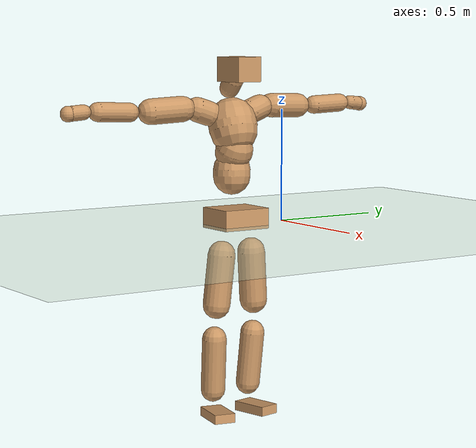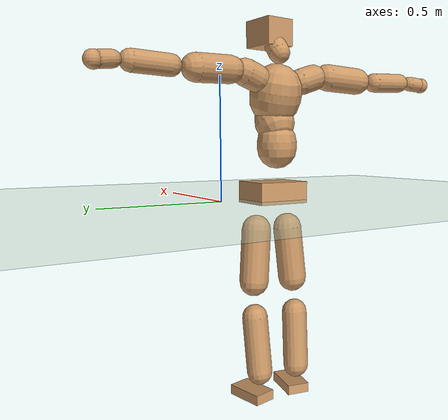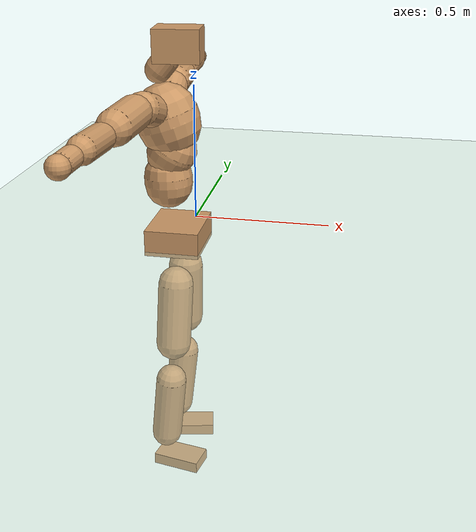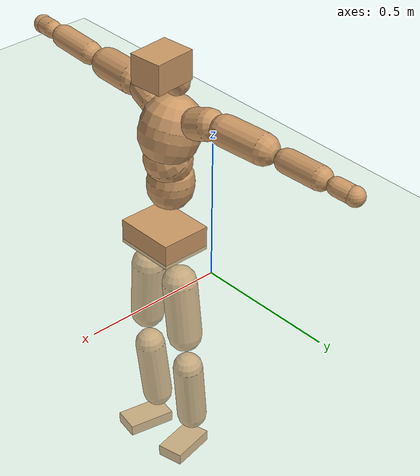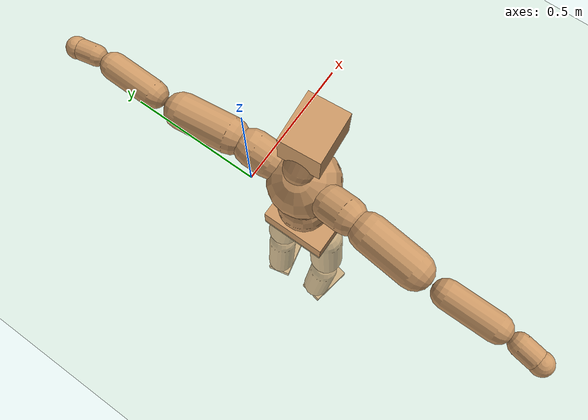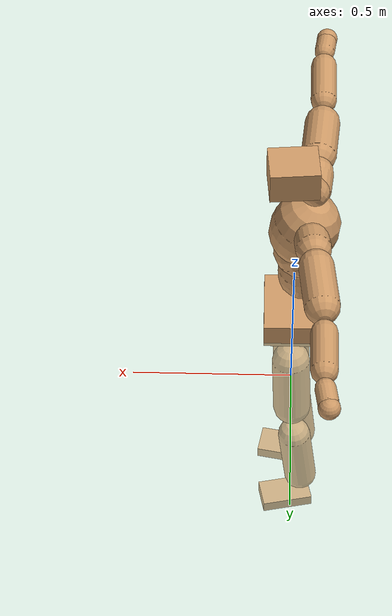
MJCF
<mujoco model="humanoid">
  <compiler coordinate="local" angle="radian"/>
  <default>
    <joint damping="0.0" armature="0.01" stiffness="0.0" limited="true"/>
    <geom conaffinity="1" condim="3" contype="7" margin="0.001" rgba="0.8 0.6 .4 1"/>
  </default>
  <asset>
    <texture type="skybox" builtin="gradient" rgb1=".4 .5 .6" rgb2="0 0 0" width="100" height="100"/>
    <texture builtin="flat" height="1278" mark="cross" markrgb="1 1 1" name="texgeom" random="0.01" rgb1="0.8 0.6 0.4" rgb2="0.8 0.6 0.4" type="cube" width="127"/>
    <texture builtin="checker" height="100" name="texplane" rgb1="0 0 0" rgb2="0.8 0.8 0.8" type="2d" width="100"/>
    <material name="MatPlane" reflectance="0.5" shininess="1" specular="1" texrepeat="60 60" texture="texplane"/>
    <material name="geom" texture="texgeom" texuniform="true"/>
  </asset>
  <worldbody>
    <light cutoff="100" diffuse="1 1 1" dir="-0 0 -1.3" directional="true" exponent="1" pos="0 0 1.3" specular=".1 .1 .1"/>
    <geom conaffinity="1" condim="3" name="floor" pos="0 0 0" rgba="0.8 0.9 0.8 1" size="100 100 .2" type="plane" material="MatPlane"/>
    <body name="Pelvis" pos="0.0003 -0.2436 0.0425">
      <freejoint name="Pelvis"/>
      <geom type="box" contype="1" conaffinity="1" density="500" pos="-0.0051 -0.0000 -0.0132" size="0.0931 0.1124 0.0453" quat="1.0000 0.0000 0.0000 0.0008" name="Pelvis"/>
      <body name="L_Hip" pos="-0.0002 0.0746 -0.0961">
        <joint name="L_Hip_x" type="hinge" pos="0 0 0" axis="1 0 0" stiffness="800" damping="80" armature="0.02" range="-180.0000 180.0000"/>
        <joint name="L_Hip_y" type="hinge" pos="0 0 0" axis="0 1 0" stiffness="800" damping="80" armature="0.02" range="-180.0000 180.0000"/>
        <joint name="L_Hip_z" type="hinge" pos="0 0 0" axis="0 0 1" stiffness="800" damping="80" armature="0.02" range="-180.0000 180.0000"/>
        <geom type="capsule" contype="1" conaffinity="1" density="500" fromto="-0.0026 0.0058 -0.0734 -0.0106 0.0233 -0.2938" size="0.0618" name="L_Hip"/>
        <body name="L_Knee" pos="-0.0132 0.0291 -0.3672">
          <joint name="L_Knee_x" type="hinge" pos="0 0 0" axis="1 0 0" stiffness="800" damping="80" armature="0.02" range="-180.0000 180.0000"/>
          <joint name="L_Knee_y" type="hinge" pos="0 0 0" axis="0 1 0" stiffness="800" damping="80" armature="0.02" range="-180.0000 180.0000"/>
          <joint name="L_Knee_z" type="hinge" pos="0 0 0" axis="0 0 1" stiffness="800" damping="80" armature="0.02" range="-180.0000 180.0000"/>
          <geom type="capsule" contype="1" conaffinity="1" density="500" fromto="-0.0088 -0.0024 -0.0787 -0.0353 -0.0095 -0.3148" size="0.0539" name="L_Knee"/>
          <body name="L_Ankle" pos="-0.0441 -0.0119 -0.3935">
            <joint name="L_Ankle_x" type="hinge" pos="0 0 0" axis="1 0 0" stiffness="800" damping="80" armature="0.02" range="-180.0000 180.0000"/>
            <joint name="L_Ankle_y" type="hinge" pos="0 0 0" axis="0 1 0" stiffness="800" damping="80" armature="0.02" range="-180.0000 180.0000"/>
            <joint name="L_Ankle_z" type="hinge" pos="0 0 0" axis="0 0 1" stiffness="800" damping="80" armature="0.02" range="-180.0000 180.0000"/>
            <geom type="box" contype="1" conaffinity="1" density="500" pos="0.0593 0.0125 -0.0287" size="0.0842 0.0474 0.0211" quat="0.9946 0.0000 0.0000 0.1038" name="L_Ankle"/>
            <body name="L_Toe" pos="0.1185 0.025 -0.0574">
              <joint name="L_Toe_x" type="hinge" pos="0 0 0" axis="1 0 0" stiffness="500" damping="50" armature="0.02" range="-180.0000 180.0000"/>
              <joint name="L_Toe_y" type="hinge" pos="0 0 0" axis="0 1 0" stiffness="500" damping="50" armature="0.02" range="-180.0000 180.0000"/>
              <joint name="L_Toe_z" type="hinge" pos="0 0 0" axis="0 0 1" stiffness="500" damping="50" armature="0.02" range="-180.0000 180.0000"/>
              <geom type="box" contype="1" conaffinity="1" density="500" pos="0.0000 0.0000 0.0282" size="0.001 0.0024 0.001" quat="0.9939 0.0000 0.0000 0.1100" name="L_Toe"/>
            </body>
          </body>
        </body>
      </body>
      <body name="R_Hip" pos="0.0028 -0.0712 -0.0965">
        <joint name="R_Hip_x" type="hinge" pos="0 0 0" axis="1 0 0" stiffness="800" damping="80" armature="0.02" range="-180.0000 180.0000"/>
        <joint name="R_Hip_y" type="hinge" pos="0 0 0" axis="0 1 0" stiffness="800" damping="80" armature="0.02" range="-180.0000 180.0000"/>
        <joint name="R_Hip_z" type="hinge" pos="0 0 0" axis="0 0 1" stiffness="800" damping="80" armature="0.02" range="-180.0000 180.0000"/>
        <geom type="capsule" contype="1" conaffinity="1" density="500" fromto="-0.0029 -0.0071 -0.0749 -0.0117 -0.0283 -0.2997" size="0.061" name="R_Hip"/>
        <body name="R_Knee" pos="-0.0147 -0.0354 -0.3746">
          <joint name="R_Knee_x" type="hinge" pos="0 0 0" axis="1 0 0" stiffness="800" damping="80" armature="0.02" range="-180.0000 180.0000"/>
          <joint name="R_Knee_y" type="hinge" pos="0 0 0" axis="0 1 0" stiffness="800" damping="80" armature="0.02" range="-180.0000 180.0000"/>
          <joint name="R_Knee_z" type="hinge" pos="0 0 0" axis="0 0 1" stiffness="800" damping="80" armature="0.02" range="-180.0000 180.0000"/>
          <geom type="capsule" contype="1" conaffinity="1" density="500" fromto="-0.0086 0.0029 -0.0790 -0.0343 0.0115 -0.3159" size="0.0542" name="R_Knee"/>
          <body name="R_Ankle" pos="-0.0429 0.0144 -0.3949">
            <joint name="R_Ankle_x" type="hinge" pos="0 0 0" axis="1 0 0" stiffness="800" damping="80" armature="0.02" range="-180.0000 180.0000"/>
            <joint name="R_Ankle_y" type="hinge" pos="0 0 0" axis="0 1 0" stiffness="800" damping="80" armature="0.02" range="-180.0000 180.0000"/>
            <joint name="R_Ankle_z" type="hinge" pos="0 0 0" axis="0 0 1" stiffness="800" damping="80" armature="0.02" range="-180.0000 180.0000"/>
            <geom type="box" contype="1" conaffinity="1" density="500" pos="0.0612 -0.0115 -0.0239" size="0.0858 0.048 0.0206" quat="0.9957 0.0000 0.0000 -0.0926" name="R_Ankle"/>
            <body name="R_Toe" pos="0.1224 -0.023 -0.0478">
              <joint name="R_Toe_x" type="hinge" pos="0 0 0" axis="1 0 0" stiffness="500" damping="50" armature="0.02" range="-180.0000 180.0000"/>
              <joint name="R_Toe_y" type="hinge" pos="0 0 0" axis="0 1 0" stiffness="500" damping="50" armature="0.02" range="-180.0000 180.0000"/>
              <joint name="R_Toe_z" type="hinge" pos="0 0 0" axis="0 0 1" stiffness="500" damping="50" armature="0.02" range="-180.0000 180.0000"/>
              <geom type="box" contype="1" conaffinity="1" density="500" pos="0.0000 0.0000 0.0266" size="0.0009 0.0024 0.0012" quat="0.9965 0.0000 0.0000 -0.0833" name="R_Toe"/>
            </body>
          </body>
        </body>
      </body>
      <body name="Torso" pos="-0.0332 -0.0035 0.1131">
        <joint name="Torso_x" type="hinge" pos="0 0 0" axis="1 0 0" stiffness="1000" damping="100" armature="0.02" range="-180.0000 180.0000"/>
        <joint name="Torso_y" type="hinge" pos="0 0 0" axis="0 1 0" stiffness="1000" damping="100" armature="0.02" range="-180.0000 180.0000"/>
        <joint name="Torso_z" type="hinge" pos="0 0 0" axis="0 0 1" stiffness="1000" damping="100" armature="0.02" range="-180.0000 180.0000"/>
        <geom type="capsule" contype="1" conaffinity="1" density="500" fromto="-0.0032 0.0026 0.0847 -0.0021 0.0017 0.0565" size="0.0826" name="Torso"/>
        <body name="Spine" pos="-0.0053 0.0043 0.1412">
          <joint name="Spine_x" type="hinge" pos="0 0 0" axis="1 0 0" stiffness="1000" damping="100" armature="0.02" range="-180.0000 180.0000"/>
          <joint name="Spine_y" type="hinge" pos="0 0 0" axis="0 1 0" stiffness="1000" damping="100" armature="0.02" range="-180.0000 180.0000"/>
          <joint name="Spine_z" type="hinge" pos="0 0 0" axis="0 0 1" stiffness="1000" damping="100" armature="0.02" range="-180.0000 180.0000"/>
          <geom type="capsule" contype="1" conaffinity="1" density="500" fromto="0.0197 0.0012 0.0330 0.0132 0.0008 0.0220" size="0.083" name="Spine"/>
          <body name="Chest" pos="0.0329 0.0021 0.055">
            <joint name="Chest_x" type="hinge" pos="0 0 0" axis="1 0 0" stiffness="1000" damping="100" armature="0.02" range="-180.0000 180.0000"/>
            <joint name="Chest_y" type="hinge" pos="0 0 0" axis="0 1 0" stiffness="1000" damping="100" armature="0.02" range="-180.0000 180.0000"/>
            <joint name="Chest_z" type="hinge" pos="0 0 0" axis="0 0 1" stiffness="1000" damping="100" armature="0.02" range="-180.0000 180.0000"/>
            <geom type="capsule" contype="1" conaffinity="1" density="500" fromto="-0.0326 -0.0002 0.0996 -0.0217 -0.0002 0.0664" size="0.1075" name="Chest"/>
            <body name="Neck" pos="-0.0656 0 0.2342">
              <joint name="Neck_x" type="hinge" pos="0 0 0" axis="1 0 0" stiffness="500" damping="50" armature="0.02" range="-180.0000 180.0000"/>
              <joint name="Neck_y" type="hinge" pos="0 0 0" axis="0 1 0" stiffness="500" damping="50" armature="0.02" range="-180.0000 180.0000"/>
              <joint name="Neck_z" type="hinge" pos="0 0 0" axis="0 0 1" stiffness="500" damping="50" armature="0.02" range="-180.0000 180.0000"/>
              <geom type="capsule" contype="1" conaffinity="1" density="500" fromto="0.0103 0.0005 0.0127 0.0414 0.0021 0.0507" size="0.0446" name="Neck"/>
              <body name="Head" pos="0.0517 0.0026 0.0634">
                <joint name="Head_x" type="hinge" pos="0 0 0" axis="1 0 0" stiffness="500" damping="50" armature="0.02" range="-180.0000 180.0000"/>
                <joint name="Head_y" type="hinge" pos="0 0 0" axis="0 1 0" stiffness="500" damping="50" armature="0.02" range="-180.0000 180.0000"/>
                <joint name="Head_z" type="hinge" pos="0 0 0" axis="0 0 1" stiffness="500" damping="50" armature="0.02" range="-180.0000 180.0000"/>
                <geom type="box" contype="1" conaffinity="1" density="500" pos="0.0269 0.0023 0.0327" size="0.0768 0.0619 0.0541" quat="0.9991 0.0000 0.0000 0.0430" name="Head"/>
              </body>
            </body>
            <body name="L_Thorax" pos="-0.0455 0.0848 0.1337">
              <joint name="L_Thorax_x" type="hinge" pos="0 0 0" axis="1 0 0" stiffness="500" damping="50" armature="0.02" range="-180.0000 180.0000"/>
              <joint name="L_Thorax_y" type="hinge" pos="0 0 0" axis="0 1 0" stiffness="500" damping="50" armature="0.02" range="-180.0000 180.0000"/>
              <joint name="L_Thorax_z" type="hinge" pos="0 0 0" axis="0 0 1" stiffness="500" damping="50" armature="0.02" range="-180.0000 180.0000"/>
              <geom type="capsule" contype="1" conaffinity="1" density="500" fromto="-0.0017 0.0185 0.0064 -0.0069 0.0738 0.0257" size="0.0553" name="L_Thorax"/>
              <body name="L_Shoulder" pos="-0.0086 0.0923 0.0321">
                <joint name="L_Shoulder_x" type="hinge" pos="0 0 0" axis="1 0 0" stiffness="500" damping="50" armature="0.02" range="-720.0000 720.0000"/>
                <joint name="L_Shoulder_y" type="hinge" pos="0 0 0" axis="0 1 0" stiffness="500" damping="50" armature="0.02" range="-720.0000 720.0000"/>
                <joint name="L_Shoulder_z" type="hinge" pos="0 0 0" axis="0 0 1" stiffness="500" damping="50" armature="0.02" range="-720.0000 720.0000"/>
                <geom type="capsule" contype="1" conaffinity="1" density="500" fromto="-0.0058 0.0513 -0.0017 -0.0233 0.2052 -0.0069" size="0.0547" name="L_Shoulder"/>
                <body name="L_Elbow" pos="-0.0292 0.2565 -0.0087">
                  <joint name="L_Elbow_x" type="hinge" pos="0 0 0" axis="1 0 0" stiffness="500" damping="50" armature="0.02" range="-720.0000 720.0000"/>
                  <joint name="L_Elbow_y" type="hinge" pos="0 0 0" axis="0 1 0" stiffness="500" damping="50" armature="0.02" range="-720.0000 720.0000"/>
                  <joint name="L_Elbow_z" type="hinge" pos="0 0 0" axis="0 0 1" stiffness="500" damping="50" armature="0.02" range="-720.0000 720.0000"/>
                  <geom type="capsule" contype="1" conaffinity="1" density="500" fromto="0.0003 0.0481 0.0017 0.0011 0.1925 0.0070" size="0.0414" name="L_Elbow"/>
                  <body name="L_Wrist" pos="0.0013 0.2406 0.0087">
                    <joint name="L_Wrist_x" type="hinge" pos="0 0 0" axis="1 0 0" stiffness="300" damping="30" armature="0.02" range="-180.0000 180.0000"/>
                    <joint name="L_Wrist_y" type="hinge" pos="0 0 0" axis="0 1 0" stiffness="300" damping="30" armature="0.02" range="-180.0000 180.0000"/>
                    <joint name="L_Wrist_z" type="hinge" pos="0 0 0" axis="0 0 1" stiffness="300" damping="30" armature="0.02" range="-180.0000 180.0000"/>
                    <geom type="capsule" contype="1" conaffinity="1" density="500" fromto="-0.0027 0.0166 -0.0020 -0.0109 0.0663 -0.0078" size="0.0317" name="L_Wrist"/>
                    <body name="L_Hand" pos="-0.0136 0.0829 -0.0098">
                      <joint name="L_Hand_x" type="hinge" pos="0 0 0" axis="1 0 0" stiffness="300" damping="30" armature="0.02" range="-180.0000 180.0000"/>
                      <joint name="L_Hand_y" type="hinge" pos="0 0 0" axis="0 1 0" stiffness="300" damping="30" armature="0.02" range="-180.0000 180.0000"/>
                      <joint name="L_Hand_z" type="hinge" pos="0 0 0" axis="0 0 1" stiffness="300" damping="30" armature="0.02" range="-180.0000 180.0000"/>
                      <geom type="sphere" contype="1" conaffinity="1" density="500" size="0.0336" pos="0.0000 0.0000 0.0000" name="L_Hand"/>
                    </body>
                  </body>
                </body>
              </body>
            </body>
            <body name="R_Thorax" pos="-0.0519 -0.086 0.1302">
              <joint name="R_Thorax_x" type="hinge" pos="0 0 0" axis="1 0 0" stiffness="500" damping="50" armature="0.02" range="-180.0000 180.0000"/>
              <joint name="R_Thorax_y" type="hinge" pos="0 0 0" axis="0 1 0" stiffness="500" damping="50" armature="0.02" range="-180.0000 180.0000"/>
              <joint name="R_Thorax_z" type="hinge" pos="0 0 0" axis="0 0 1" stiffness="500" damping="50" armature="0.02" range="-180.0000 180.0000"/>
              <geom type="capsule" contype="1" conaffinity="1" density="500" fromto="-0.0025 -0.0195 0.0067 -0.0098 -0.0779 0.0266" size="0.0546" name="R_Thorax"/>
              <body name="R_Shoulder" pos="-0.0123 -0.0974 0.0333">
                <joint name="R_Shoulder_x" type="hinge" pos="0 0 0" axis="1 0 0" stiffness="500" damping="50" armature="0.02" range="-720.0000 720.0000"/>
                <joint name="R_Shoulder_y" type="hinge" pos="0 0 0" axis="0 1 0" stiffness="500" damping="50" armature="0.02" range="-720.0000 720.0000"/>
                <joint name="R_Shoulder_z" type="hinge" pos="0 0 0" axis="0 0 1" stiffness="500" damping="50" armature="0.02" range="-720.0000 720.0000"/>
                <geom type="capsule" contype="1" conaffinity="1" density="500" fromto="-0.0044 -0.0509 -0.0026 -0.0175 -0.2037 -0.0104" size="0.0563" name="R_Shoulder"/>
                <body name="R_Elbow" pos="-0.0219 -0.2547 -0.0129">
                  <joint name="R_Elbow_x" type="hinge" pos="0 0 0" axis="1 0 0" stiffness="500" damping="50" armature="0.02" range="-720.0000 720.0000"/>
                  <joint name="R_Elbow_y" type="hinge" pos="0 0 0" axis="0 1 0" stiffness="500" damping="50" armature="0.02" range="-720.0000 720.0000"/>
                  <joint name="R_Elbow_z" type="hinge" pos="0 0 0" axis="0 0 1" stiffness="500" damping="50" armature="0.02" range="-720.0000 720.0000"/>
                  <geom type="capsule" contype="1" conaffinity="1" density="500" fromto="-0.0004 -0.0500 0.0022 -0.0016 -0.2001 0.0089" size="0.0418" name="R_Elbow"/>
                  <body name="R_Wrist" pos="-0.002 -0.2502 0.0112">
                    <joint name="R_Wrist_x" type="hinge" pos="0 0 0" axis="1 0 0" stiffness="300" damping="30" armature="0.02" range="-180.0000 180.0000"/>
                    <joint name="R_Wrist_y" type="hinge" pos="0 0 0" axis="0 1 0" stiffness="300" damping="30" armature="0.02" range="-180.0000 180.0000"/>
                    <joint name="R_Wrist_z" type="hinge" pos="0 0 0" axis="0 0 1" stiffness="300" damping="30" armature="0.02" range="-180.0000 180.0000"/>
                    <geom type="capsule" contype="1" conaffinity="1" density="500" fromto="-0.0022 -0.0169 -0.0015 -0.0087 -0.0675 -0.0058" size="0.0326" name="R_Wrist"/>
                    <body name="R_Hand" pos="-0.0108 -0.0843 -0.0073">
                      <joint name="R_Hand_x" type="hinge" pos="0 0 0" axis="1 0 0" stiffness="300" damping="30" armature="0.02" range="-180.0000 180.0000"/>
                      <joint name="R_Hand_y" type="hinge" pos="0 0 0" axis="0 1 0" stiffness="300" damping="30" armature="0.02" range="-180.0000 180.0000"/>
                      <joint name="R_Hand_z" type="hinge" pos="0 0 0" axis="0 0 1" stiffness="300" damping="30" armature="0.02" range="-180.0000 180.0000"/>
                      <geom type="sphere" contype="1" conaffinity="1" density="500" size="0.0340" pos="0.0000 0.0000 0.0000" name="R_Hand"/>
                    </body>
                  </body>
                </body>
              </body>
            </body>
          </body>
        </body>
      </body>
    </body>
  </worldbody>
  <actuator>
    <motor name="L_Hip_x" joint="L_Hip_x" gear="500"/>
    <motor name="L_Hip_y" joint="L_Hip_y" gear="500"/>
    <motor name="L_Hip_z" joint="L_Hip_z" gear="500"/>
    <motor name="L_Knee_x" joint="L_Knee_x" gear="500"/>
    <motor name="L_Knee_y" joint="L_Knee_y" gear="500"/>
    <motor name="L_Knee_z" joint="L_Knee_z" gear="500"/>
    <motor name="L_Ankle_x" joint="L_Ankle_x" gear="500"/>
    <motor name="L_Ankle_y" joint="L_Ankle_y" gear="500"/>
    <motor name="L_Ankle_z" joint="L_Ankle_z" gear="500"/>
    <motor name="L_Toe_x" joint="L_Toe_x" gear="500"/>
    <motor name="L_Toe_y" joint="L_Toe_y" gear="500"/>
    <motor name="L_Toe_z" joint="L_Toe_z" gear="500"/>
    <motor name="R_Hip_x" joint="R_Hip_x" gear="500"/>
    <motor name="R_Hip_y" joint="R_Hip_y" gear="500"/>
    <motor name="R_Hip_z" joint="R_Hip_z" gear="500"/>
    <motor name="R_Knee_x" joint="R_Knee_x" gear="500"/>
    <motor name="R_Knee_y" joint="R_Knee_y" gear="500"/>
    <motor name="R_Knee_z" joint="R_Knee_z" gear="500"/>
    <motor name="R_Ankle_x" joint="R_Ankle_x" gear="500"/>
    <motor name="R_Ankle_y" joint="R_Ankle_y" gear="500"/>
    <motor name="R_Ankle_z" joint="R_Ankle_z" gear="500"/>
    <motor name="R_Toe_x" joint="R_Toe_x" gear="500"/>
    <motor name="R_Toe_y" joint="R_Toe_y" gear="500"/>
    <motor name="R_Toe_z" joint="R_Toe_z" gear="500"/>
    <motor name="Torso_x" joint="Torso_x" gear="500"/>
    <motor name="Torso_y" joint="Torso_y" gear="500"/>
    <motor name="Torso_z" joint="Torso_z" gear="500"/>
    <motor name="Spine_x" joint="Spine_x" gear="500"/>
    <motor name="Spine_y" joint="Spine_y" gear="500"/>
    <motor name="Spine_z" joint="Spine_z" gear="500"/>
    <motor name="Chest_x" joint="Chest_x" gear="500"/>
    <motor name="Chest_y" joint="Chest_y" gear="500"/>
    <motor name="Chest_z" joint="Chest_z" gear="500"/>
    <motor name="Neck_x" joint="Neck_x" gear="500"/>
    <motor name="Neck_y" joint="Neck_y" gear="500"/>
    <motor name="Neck_z" joint="Neck_z" gear="500"/>
    <motor name="Head_x" joint="Head_x" gear="500"/>
    <motor name="Head_y" joint="Head_y" gear="500"/>
    <motor name="Head_z" joint="Head_z" gear="500"/>
    <motor name="L_Thorax_x" joint="L_Thorax_x" gear="500"/>
    <motor name="L_Thorax_y" joint="L_Thorax_y" gear="500"/>
    <motor name="L_Thorax_z" joint="L_Thorax_z" gear="500"/>
    <motor name="L_Shoulder_x" joint="L_Shoulder_x" gear="500"/>
    <motor name="L_Shoulder_y" joint="L_Shoulder_y" gear="500"/>
    <motor name="L_Shoulder_z" joint="L_Shoulder_z" gear="500"/>
    <motor name="L_Elbow_x" joint="L_Elbow_x" gear="500"/>
    <motor name="L_Elbow_y" joint="L_Elbow_y" gear="500"/>
    <motor name="L_Elbow_z" joint="L_Elbow_z" gear="500"/>
    <motor name="L_Wrist_x" joint="L_Wrist_x" gear="500"/>
    <motor name="L_Wrist_y" joint="L_Wrist_y" gear="500"/>
    <motor name="L_Wrist_z" joint="L_Wrist_z" gear="500"/>
    <motor name="L_Hand_x" joint="L_Hand_x" gear="500"/>
    <motor name="L_Hand_y" joint="L_Hand_y" gear="500"/>
    <motor name="L_Hand_z" joint="L_Hand_z" gear="500"/>
    <motor name="R_Thorax_x" joint="R_Thorax_x" gear="500"/>
    <motor name="R_Thorax_y" joint="R_Thorax_y" gear="500"/>
    <motor name="R_Thorax_z" joint="R_Thorax_z" gear="500"/>
    <motor name="R_Shoulder_x" joint="R_Shoulder_x" gear="500"/>
    <motor name="R_Shoulder_y" joint="R_Shoulder_y" gear="500"/>
    <motor name="R_Shoulder_z" joint="R_Shoulder_z" gear="500"/>
    <motor name="R_Elbow_x" joint="R_Elbow_x" gear="500"/>
    <motor name="R_Elbow_y" joint="R_Elbow_y" gear="500"/>
    <motor name="R_Elbow_z" joint="R_Elbow_z" gear="500"/>
    <motor name="R_Wrist_x" joint="R_Wrist_x" gear="500"/>
    <motor name="R_Wrist_y" joint="R_Wrist_y" gear="500"/>
    <motor name="R_Wrist_z" joint="R_Wrist_z" gear="500"/>
    <motor name="R_Hand_x" joint="R_Hand_x" gear="500"/>
    <motor name="R_Hand_y" joint="R_Hand_y" gear="500"/>
    <motor name="R_Hand_z" joint="R_Hand_z" gear="500"/>
  </actuator>
  <contact>
    <exclude body1="Torso" body2="Chest"/>
    <exclude body1="Head" body2="Chest"/>
    <exclude body1="R_Knee" body2="R_Toe"/>
    <exclude body1="R_Knee" body2="L_Ankle"/>
    <exclude body1="R_Knee" body2="L_Toe"/>
    <exclude body1="L_Knee" body2="L_Toe"/>
    <exclude body1="L_Knee" body2="R_Ankle"/>
    <exclude body1="L_Knee" body2="R_Toe"/>
    <exclude body1="L_Shoulder" body2="Chest"/>
    <exclude body1="R_Shoulder" body2="Chest"/>
  </contact>
  <sensor/>
  <size njmax="700" nconmax="700"/>
</mujoco>
